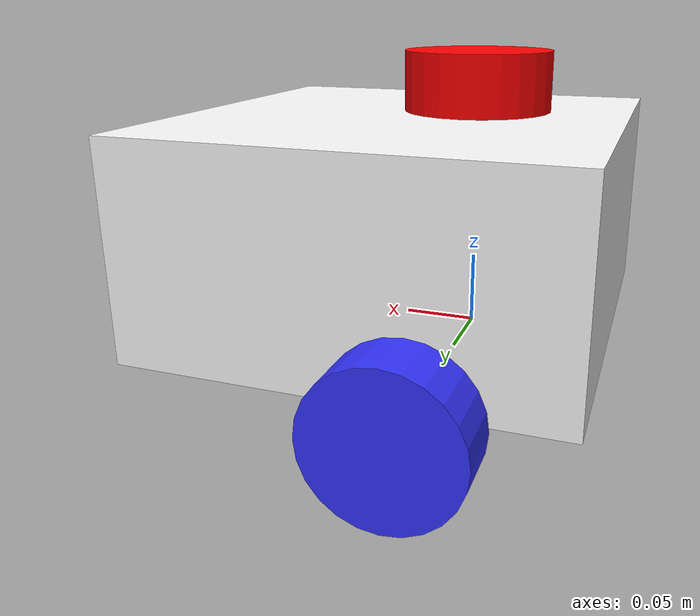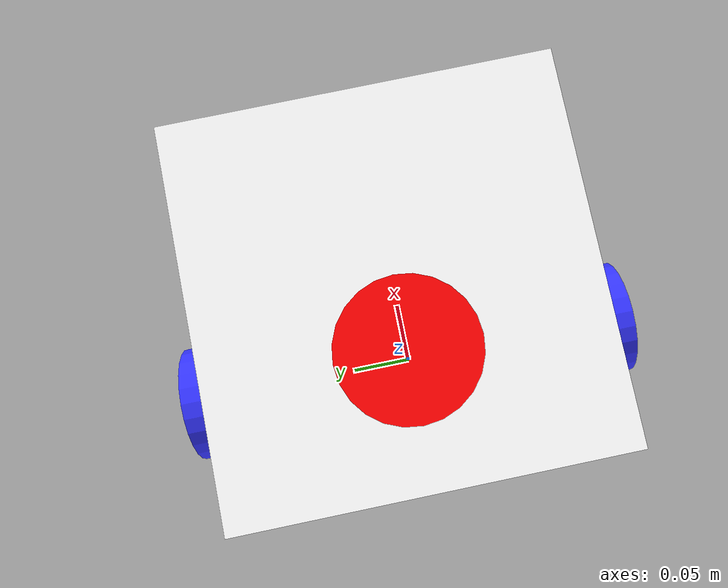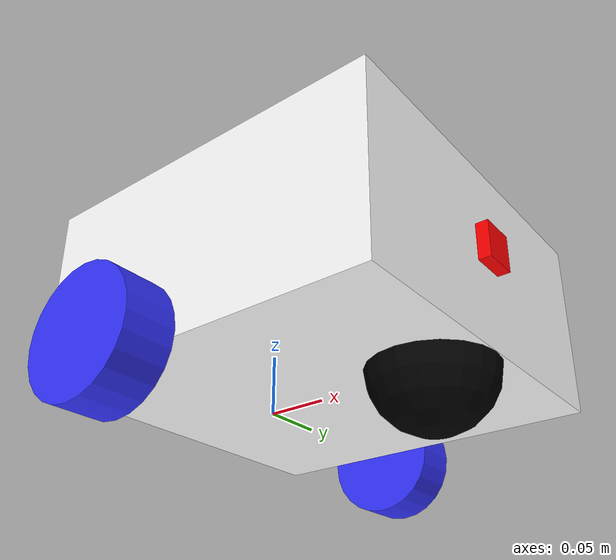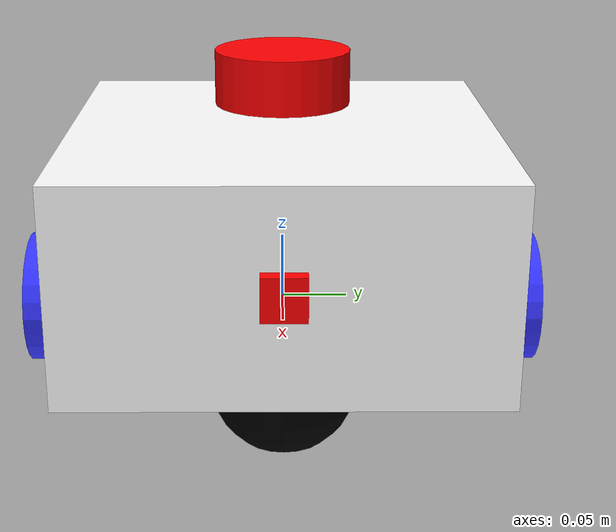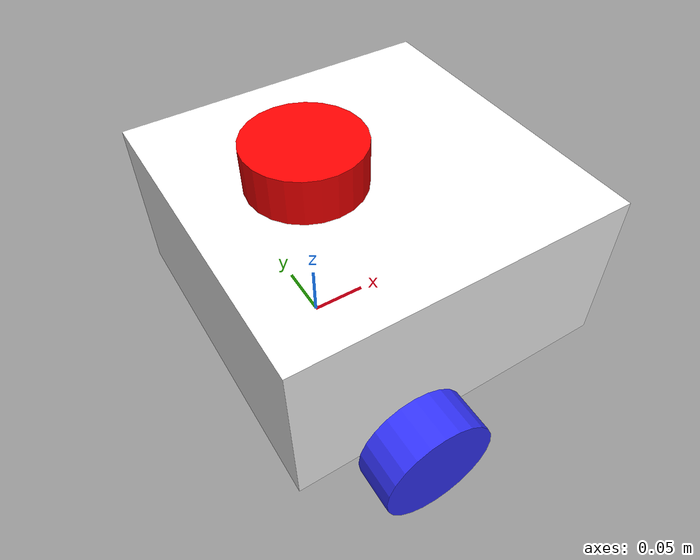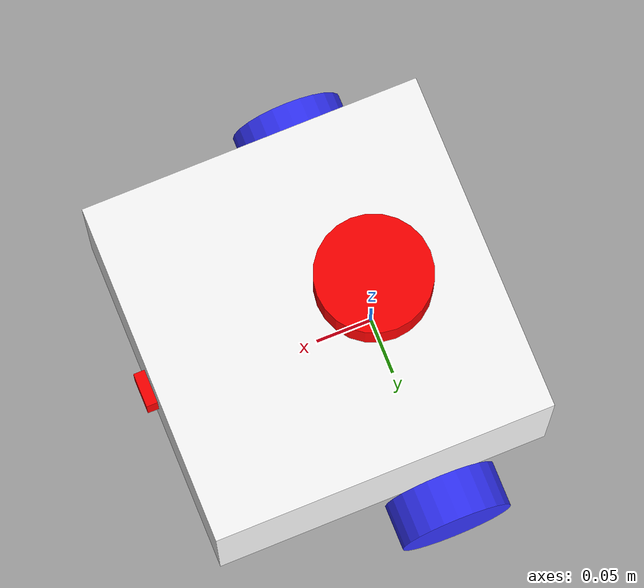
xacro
<?xml version="1.0"?>
<robot xmlns:xacro="http://www.ros.org/wiki/xacro"  name="robot">

    <xacro:include filename="robot_core.xacro"/>
    <xacro:include filename="ros2_control.xacro"/>
    <xacro:include filename="lidar.xacro"/>
    <xacro:include filename="depth_camera.xacro"/>

</robot>

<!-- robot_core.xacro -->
<robot xmlns:xacro="http://www.ros.org/wiki/xacro"  name="robot">

    <xacro:include filename='inertial_macros.xacro'/>

    <!-- Below are the colours defined for objects-->
     <material name='white'>
        <color rgba='1 1 1 1' />
     </material>

     <material name='orange'>
        <color rgba='1 0.3 0.1 1' />
     </material>

     <material name='blue'>
        <color rgba='0.2 0.2 1 1' />
     </material>

     <material name='black'>
        <color rgba='0 0 0 1' />
     </material>

     <material name='red'>
        <color rgba='1 0 0 1' />
     </material>

     <!-- BASE LINK -->

    <!-- Links are belwo (First link is always the base link) -->
    <!-- For a differential drive robot base link is at center of two drive wheels -->

    <link name='base_link'>

    </link>

    <!-- CHASSIS LINK -->

    <joint name='chassis_joint' type='fixed'>
        <parent link='base_link'/>
        <child link='chassis'/>
        <origin xyz = '-0.1 0 0'/>
    </joint>

    <link name='chassis'>
        <visual>
            <!-- Box origin would be centererd around the chassis and we want it to be at the back and bottom,
             so we shift the box forward by 1/2 of its length and up by 1/2 of its height-->
            <origin xyz = '0.15 0 0.075'/>
            <geometry>
                <box size='0.3 0.3 0.15'/>
            </geometry>
            <material name='white'/>

        </visual>
        <collision>

            <origin xyz = '0.15 0 0.075'/>
            <geometry>
                <box size='0.3 0.3 0.15'/>
            </geometry>
        </collision>
        <xacro:inertial_box mass='0.5' x='0.3' y='0.3' z='0.15'>
            <origin xyz = '0.15 0 0.075' rpy='0 0 0'/>
        </xacro:inertial_box>
    </link>

    <gazebo reference='chassis'>
        <material>Gazebo/White</material>
    </gazebo>

    <!-- LEFT WHEEL LINK -->
    <joint name='left_wheel_joint' type='continuous'>
        <parent link='base_link'/>
        <child link = 'left_wheel'/>
        <origin xyz='0 0.175 0' rpy='-${pi/2} 0 0'/>
        <axis xyz='0 0 1'/>
    </joint>

    <link name='left_wheel'>
        <visual>
            <geometry>
                <cylinder radius='0.05' length='0.04'/>
            </geometry>
            <material name='blue'/>
        </visual>
        <collision>
            <geometry>
                <sphere radius='0.05'/>
            </geometry>
        </collision>
        <xacro:inertial_cylinder mass='0.1' radius='0.05' length='0.04'>
            <origin xyz = '0 0 0' rpy='0 0 0'/>
        </xacro:inertial_cylinder>
    </link>

    <gazebo reference='left_wheel'>
        <material>Gazebo/Blue</material>
    </gazebo>

    <!-- RIGHT WHEEL LINK -->
    <joint name='right_wheel_joint' type='continuous'>
        <parent link='base_link'/>
        <child link = 'right_wheel'/>
        <origin xyz='0 -0.175 0' rpy='${pi/2} 0 0'/>
        <axis xyz='0 0 -1'/>
    </joint>

    <link name='right_wheel'>
        <visual>
            <geometry>
                <cylinder radius='0.05' length='0.04'/>
            </geometry>
            <material name='blue'/>
        </visual>
        <collision>
            <geometry>
                <sphere radius='0.05'/>
            </geometry>
        </collision>
        <xacro:inertial_cylinder mass='0.1' radius='0.05' length='0.04'>
            <origin xyz = '0 0 0' rpy='0 0 0'/>
        </xacro:inertial_cylinder>
    </link>

    <gazebo reference='right_wheel'>
        <material>Gazebo/Blue</material>
    </gazebo>

    <!-- CASTER WHEEL LINK -->
    <joint name='caster_wheel_joint' type='fixed'>
        <parent link='base_link'/>
        <child link = 'caster_wheel' />
        <origin xyz = '0.15 0 0'/>
    </joint>

    <link name='caster_wheel'>
        <visual>
            <geometry>
                <sphere radius='0.05'/>
            </geometry>
            <material name='black'/>
        </visual>
        <collision>
            <geometry>
                <sphere radius='0.05'/>
            </geometry>
        </collision>
        <xacro:inertial_sphere mass='0.1' radius='0.05'>
            <origin xyz = '0 0 0' rpy='0 0 0'/>
        </xacro:inertial_sphere>
    </link>

    <gazebo reference='caster_wheel'>
        <material>Gazebo/Black</material>
        <mu1 value = '0.0001'/>
        <mu2 value='0.0001'/>
    </gazebo>

</robot>

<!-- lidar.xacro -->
<robot xmlns:xacro="http://www.ros.org/wiki/xacro"  name="robot">

    <joint name='lidar_joint' type='fixed'>
        <parent link='chassis'/>
        <child link='lidar_frame'/>
        <origin xyz='0.1 0 0.175' rpy='0 0 0'/>
    </joint>

    <link name='lidar_frame'>
        <visual>
            <geometry>
                <cylinder radius='0.05' length='0.04'/>
            </geometry>
            <material name='red'/>
        </visual>
        <collision>
            <geometry>
                <cylinder radius='0.05' length='0.04'/>
            </geometry>
        </collision>
        <xacro:inertial_cylinder mass='0.1' radius='0.05' length='0.04'>
            <origin xyz = '0 0 0' rpy='0 0 0'/>
        </xacro:inertial_cylinder>
    </link>

    <gazebo reference='lidar_frame'>
        <sensor name='laser' type='ray'>
            <pose> 0 0 0 0 0 0</pose>
            <visualize>false</visualize> <!--This is to turn lasers on/off(true/false  ) in Gazebo-->
            <update_rate>10</update_rate>
            <ray>
                <scan>
                    <horizontal>
                        <samples>360</samples>
                        <resolution>1</resolution> <!--This might not be used-->
                        <min_angle>-3.14</min_angle>
                        <max_angle>3.14</max_angle>
                    </horizontal>
                </scan>
                <range>
                    <min>0.3</min>
                    <max>12</max>
                    <resolution>1</resolution> <!--This might not be used-->
                </range>
            </ray>
            <plugin name='laser_controller' filename='libgazebo_ros_ray_sensor.so'>
                <ros>
                <argument>--ros-args --remap ~/out:=scan</argument>
                </ros>
                <output_type>sensor_msgs/LaserScan</output_type>
                <frame_name>lidar_frame</frame_name> <!--Name of the frame its attached with-->
            </plugin>
        </sensor>
        <material>Gazebo/Red</material>
    </gazebo>

</robot>

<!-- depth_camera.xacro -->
<robot xmlns:xacro="http://www.ros.org/wiki/xacro"  name="robot">

    <!-- This joint follows ROS Body Standard ie. X is pointing inwards, y to the left and z pointing upwards -->
    <joint name='camera_joint' type='fixed'>
        <parent link='chassis'/>
        <child link='camera_link'/>
        <origin xyz='0.305 0 0.08' rpy='0 0 0'/>
    </joint>

    <link name='camera_link'>
        <visual>
            <geometry>
                <box size='0.01 0.03 0.03'/>
            </geometry>
            <material name='red'/>
        </visual>
    </link>

    <!-- This joint follows ROS Camera/Images Standard ie. X is to the right, y is pointing down and z is inwards -->
    <!-- This link will convert form Body Co-ordinate system to Camera Co-ordinate system  -->
    <joint name='camera_optical_joint' type='fixed'>
        <parent link='camera_link'/>
        <child link='camera_link_optical'/>
        <origin xyz='0 0 0' rpy='${-pi/2} 0 ${-pi/2}'/>
    </joint>

    <link name='camera_link_optical'></link>

    <gazebo reference='camera_link'>
        <material>Gazebo/Red</material>
        <sensor name='camera' type='depth'>
            <pose> 0 0 0 0 0 0</pose>
            <visualize>True</visualize>
            <update_rate>10</update_rate>
            <camera>
                <horizontal_fov>1.089</horizontal_fov>
                <image>
                    <foramt>R8G8B8</foramt>
                    <width>640</width>
                    <height>480</height>
                </image>
                <clip>
                    <near>0.05</near>
                    <far>8.0</far>
                </clip>
            </camera>
            <plugin name='camera_controller' filename='libgazebo_ros_camera.so'>
                <frame_name>camera_link_optical</frame_name> <!--Name of the frame following ROS Camera/Images Standard-->
                <min_depth>0.1</min_depth>
                <max_depth>100</max_depth>
            </plugin>
        </sensor>

    </gazebo>

</robot>
